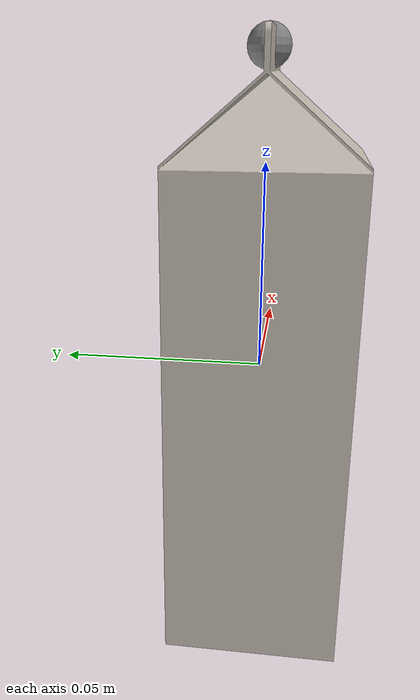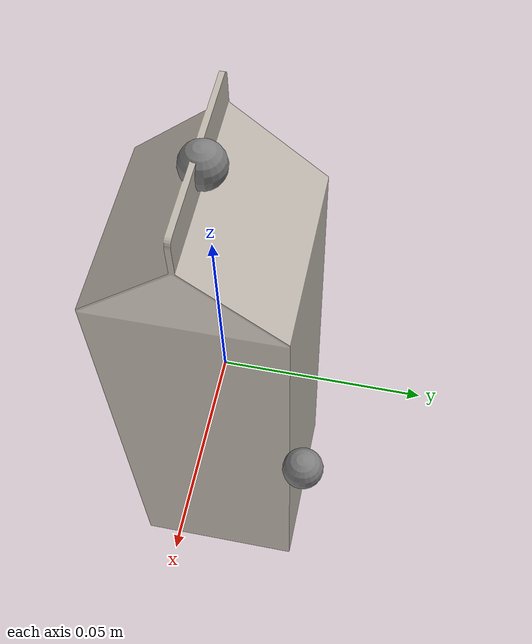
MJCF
<!-- sample of a general object defined in mujoco -->
<mujoco model="milk">
  <asset>
    <mesh file="meshes/milk.stl" name="milk_mesh" scale="0.9 0.9 0.9"/>
    <texture file="../textures/ceramic.png" name="tex-ceramic"/>
    <material name="ceramic" reflectance="0.5" texrepeat="1 1" texture="tex-ceramic" texuniform="true"/>
  </asset>
  <worldbody>
    <body>
      <body name="collision">
        <geom pos="0 0 0" mesh="milk_mesh" type="mesh" solimp="0.998 0.998 0.001" solref="0.001 1" density="100" friction="0.95 0.3 0.1" material="ceramic" group="1" condim="4"/>
      </body>
      <body name="visual">
        <geom pos="0 0 0" mesh="milk_mesh" type="mesh" material="ceramic"  conaffinity="0" contype="0"  group="0" mass="0.0001"/>
        <geom pos="0 0 0" mesh="milk_mesh" type="mesh" material="ceramic"  conaffinity="0" contype="0"  group="1" mass="0.0001"/>
      </body>
      <site pos="0 0 -0.085" name="bottom_site"/>
      <site pos="0 0 0.075" name="top_site"/>
      <site pos="0.025 0.025 0" name="horizontal_radius_site"/>
    </body>
  </worldbody>
</mujoco>
